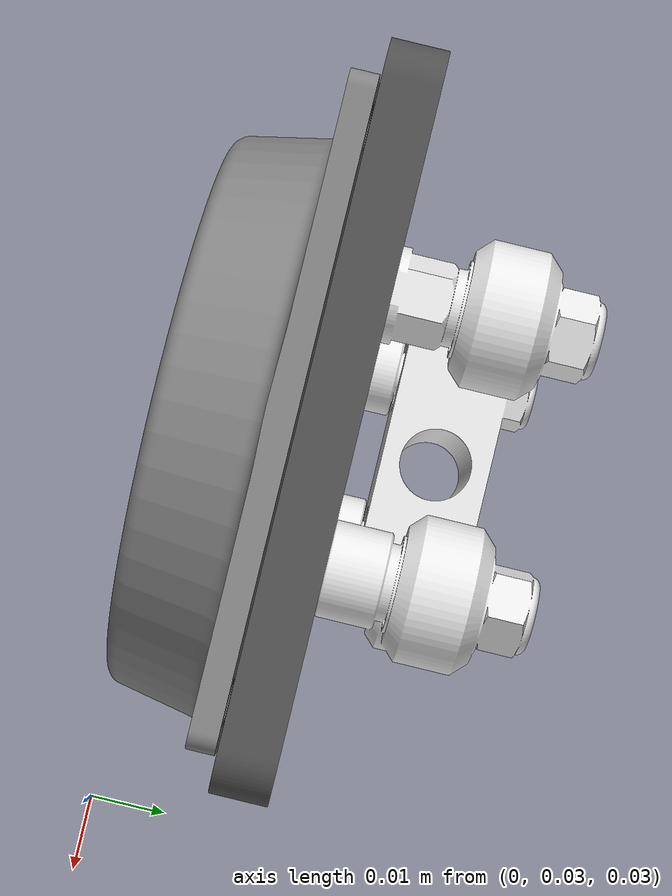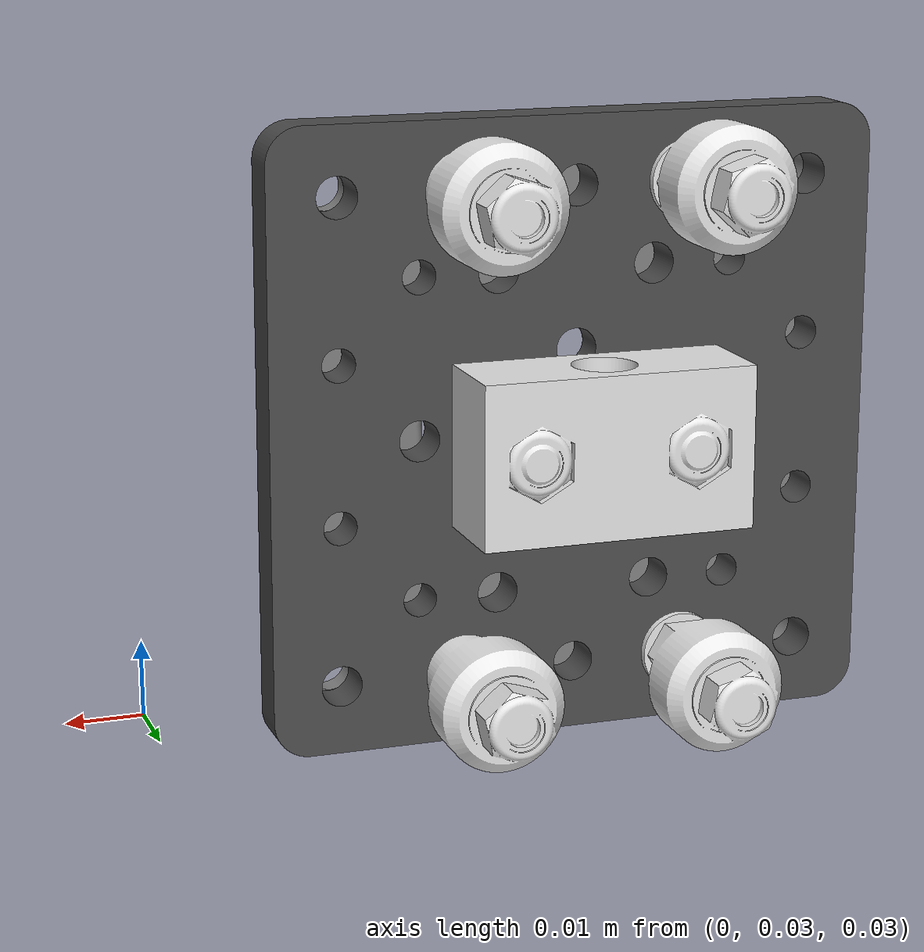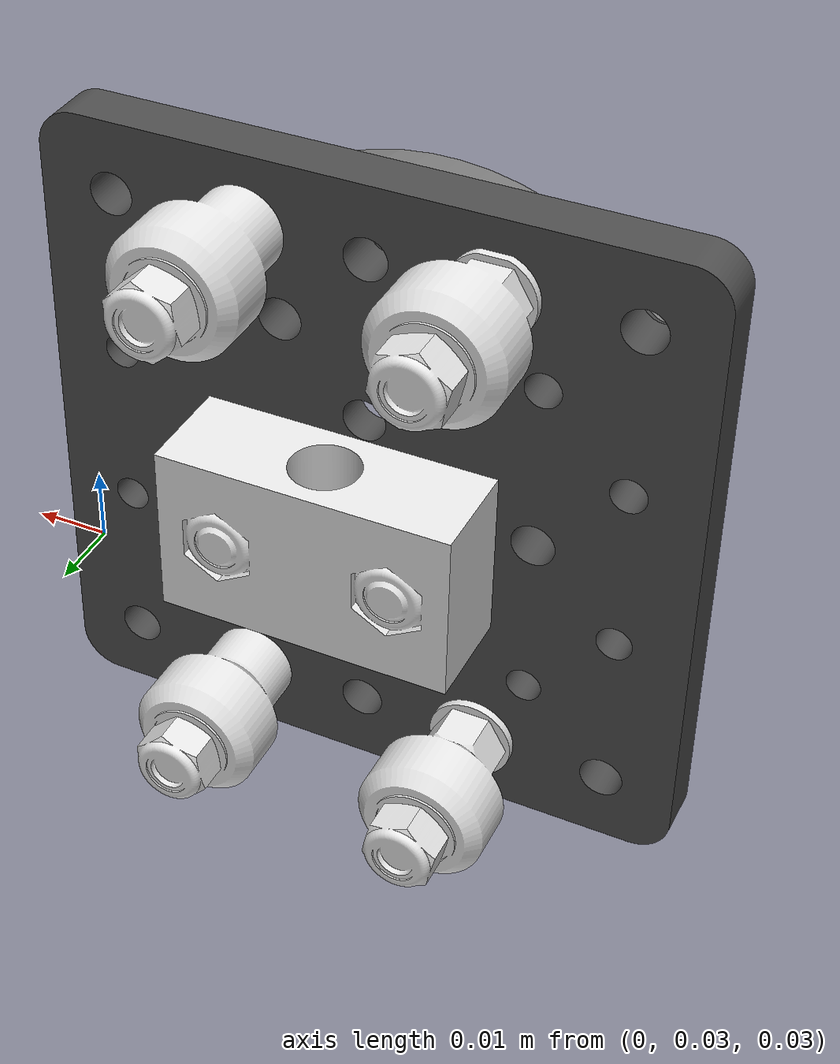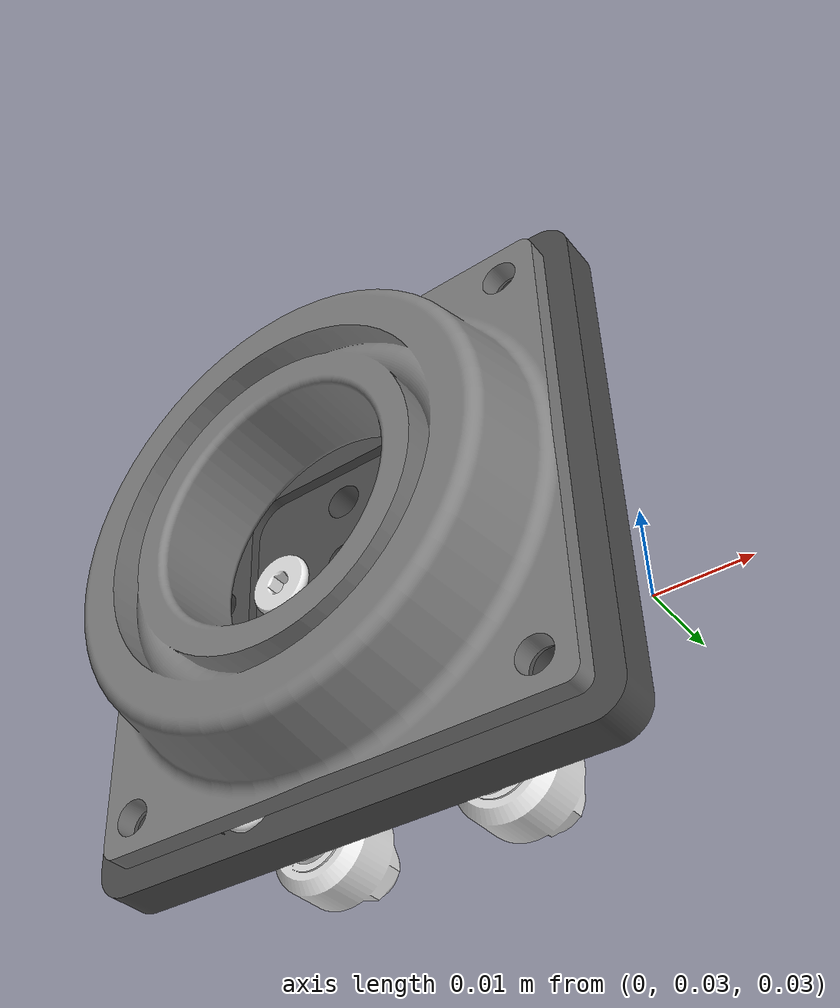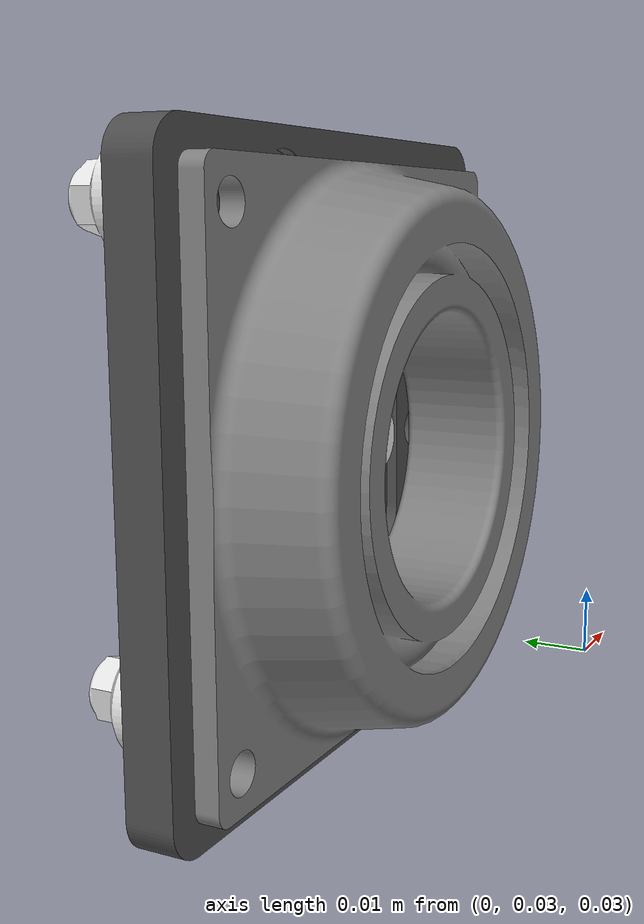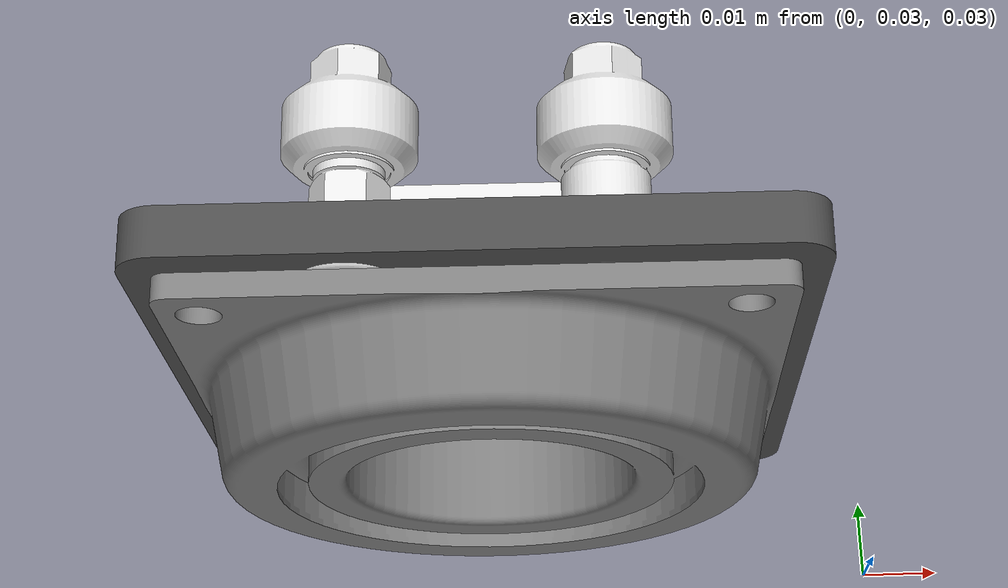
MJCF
<mujoco model="RightVerticalRotationSlider">
  <default>
    <default class="visual">
      <geom group="2" type="mesh" contype="0" conaffinity="0"/>
    </default>
    <default class="collision">
      <geom group="3" type="mesh"/>
    </default>
  </default>
  <asset>
    <material name="0.301961_0.301961_0.301961_0.000000_0.026" specular="0.0" shininess="0.0" rgba="0.302000 0.302000 0.302000 1.000000"/>
    <material name="0.501961_0.501961_0.501961_0.000000_0.008" specular="0.0" shininess="0.0" rgba="0.502000 0.502000 0.502000 1.000000"/>
    <material name="0.901961_0.901961_0.901961_0.000000_0.016" specular="0.0" shininess="0.0" rgba="0.902000 0.902000 0.902000 1.000000"/>
    <mesh file="RightVerticalRotationSlider_0.obj"/>
    <mesh file="RightVerticalRotationSlider_1.obj"/>
    <mesh file="RightVerticalRotationSlider_2.obj"/>
  </asset>
  <worldbody>
    <body name="RightVerticalRotationSlider">
      <geom mesh="RightVerticalRotationSlider_0" material="0.501961_0.501961_0.501961_0.000000_0.008" class="visual"/>
      <geom mesh="RightVerticalRotationSlider_1" material="0.301961_0.301961_0.301961_0.000000_0.026" class="visual"/>
      <geom mesh="RightVerticalRotationSlider_2" material="0.901961_0.901961_0.901961_0.000000_0.016" class="visual"/>
      <geom mesh="RightVerticalRotationSlider_0" class="collision"/>
      <geom mesh="RightVerticalRotationSlider_1" class="collision"/>
      <geom mesh="RightVerticalRotationSlider_2" class="collision"/>
    </body>
  </worldbody>
</mujoco>
